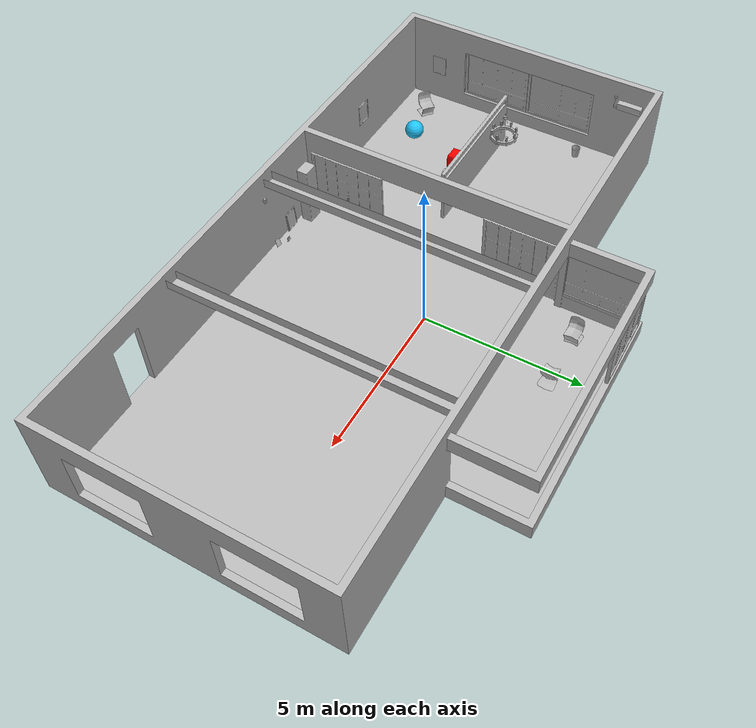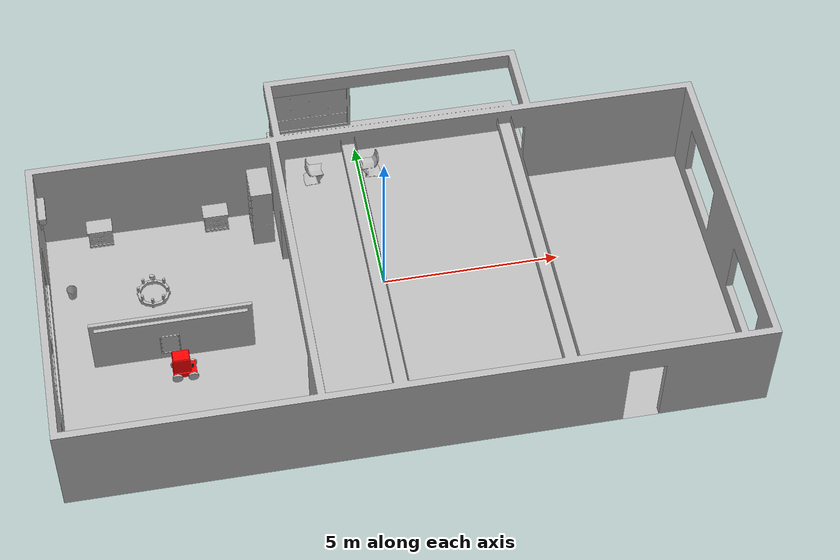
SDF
<sdf version="1.7">
 <world name="default">
  <model name="AirconditionerA_01_001">
   <static>1</static>
   <frame name="aws_robomaker_residential_AirconditionerA_01::__model__" attached_to="aws_robomaker_residential_AirconditionerA_01::link">
    <pose relative_to="__model__">0 0 0 0 -0 0</pose>
   </frame>
   <link name="aws_robomaker_residential_AirconditionerA_01::link">
    <inertial><mass>1</mass></inertial>
    <collision name="collision">
     <geometry>
      <mesh>
       <uri>model://aws_robomaker_residential_AirconditionerA_01/meshes/aws_AirconditionerA_01_collision.DAE</uri>
       <scale>1 1 1</scale>
      </mesh>
     </geometry>
    </collision>
    <visual name="visual">
     <geometry>
      <mesh>
       <uri>model://aws_robomaker_residential_AirconditionerA_01/meshes/aws_AirconditionerA_01_visual.DAE</uri>
      </mesh>
     </geometry>
     <meta><layer>1</layer></meta>
    </visual>
    <pose relative_to="aws_robomaker_residential_AirconditionerA_01::__model__">0 0 0 0 -0 0</pose>
   </link>
   <static>1</static>
   <pose>-9.19941 2.41123 2.08454 0 -0 0</pose>
  </model>
  <model name="AirconditionerB_01_001">
   <static>1</static>
   <frame name="aws_robomaker_residential_AirconditionerB_01::__model__" attached_to="aws_robomaker_residential_AirconditionerB_01::link">
    <pose relative_to="__model__">0 0 0 0 -0 0</pose>
   </frame>
   <link name="aws_robomaker_residential_AirconditionerB_01::link">
    <inertial><mass>1</mass></inertial>
    <collision name="collision">
     <geometry>
      <mesh>
       <uri>model://aws_robomaker_residential_AirconditionerB_01/meshes/aws_AirconditionerB_01_collision.DAE</uri>
       <scale>1 1 1</scale>
      </mesh>
     </geometry>
    </collision>
    <visual name="visual">
     <geometry>
      <mesh>
       <uri>model://aws_robomaker_residential_AirconditionerB_01/meshes/aws_AirconditionerB_01_visual.DAE</uri>
      </mesh>
     </geometry>
     <meta><layer>1</layer></meta>
    </visual>
    <pose relative_to="aws_robomaker_residential_AirconditionerB_01::__model__">0 0 0 0 -0 0</pose>
   </link>
   <pose>-2.00466 -5.22661 0.003485 0 -0 0</pose>
  </model>
  <model name="Ball_01_003">
   <static>1</static>
   <frame name="aws_robomaker_residential_Ball_01::__model__" attached_to="aws_robomaker_residential_Ball_01::link">
    <pose relative_to="__model__">0 0 0 0 -0 0</pose>
   </frame>
   <link name="aws_robomaker_residential_Ball_01::link">
    <inertial>
     <mass>0.12</mass>
     <inertia>
      <ixx>0.030752</ixx>
      <ixy>0</ixy>
      <ixz>0</ixz>
      <iyy>0.030752</iyy>
      <iyz>0</iyz>
      <izz>0.030752</izz>
     </inertia>
    </inertial>
    <collision name="collision">
     <geometry><sphere><radius>0.31</radius></sphere></geometry>
     <surface>
      <friction><ode><mu>0.85</mu><mu2>0.85</mu2></ode></friction>
      <contact><ode><kd>8500</kd><max_vel>5.1</max_vel></ode></contact>
     </surface>
    </collision>
    <visual name="visual">
     <geometry><sphere><radius>0.31</radius></sphere></geometry>
     <material><diffuse>0.12 0.76 0.97 1</diffuse><ambient>0.03 0.21 0.27 1</ambient></material>
     <meta><layer>1</layer></meta>
    </visual>
    <pose relative_to="aws_robomaker_residential_Ball_01::__model__">0 0 0 0 -0 0</pose>
   </link>
   <pose>-6.9455 -4.22174 0.318684 0 -0 0</pose>
  </model>
  <model name="NightStand_01_001">
   <static>1</static>
   <frame name="aws_robomaker_residential_NightStand_01::__model__" attached_to="aws_robomaker_residential_NightStand_01::link">
    <pose relative_to="__model__">0 0 0 0 -0 0</pose>
   </frame>
   <link name="aws_robomaker_residential_NightStand_01::link">
    <inertial>
     <mass>13.6</mass>
     <inertia><ixx>0.6165</ixx><ixy>0</ixy><ixz>0</ixz><iyy>1.29664</iyy><iyz>0</iyz><izz>0.7706</izz></inertia>
    </inertial>
    <collision name="collision">
     <geometry>
      <mesh>
       <uri>model://aws_robomaker_residential_NightStand_01/meshes/aws_NightStand_01_collision.DAE</uri>
       <scale>1 1 1</scale>
      </mesh>
     </geometry>
    </collision>
    <visual name="visual">
     <geometry>
      <mesh><uri>model://aws_robomaker_residential_NightStand_01/meshes/aws_NightStand_01_visual.DAE</uri></mesh>
     </geometry>
     <meta><layer>1</layer></meta>
    </visual>
    <pose relative_to="aws_robomaker_residential_NightStand_01::__model__">0 0 0 0 -0 0</pose>
   </link>
   <static>1</static>
   <pose>-7.72551 2.86042 0.005258 -2e-06 0 0</pose>
  </model>
  <model name="NightStand_01_002">
   <static>1</static>
   <frame name="aws_robomaker_residential_NightStand_01::__model__" attached_to="aws_robomaker_residential_NightStand_01::link">
    <pose relative_to="__model__">0 0 0 0 -0 0</pose>
   </frame>
   <link name="aws_robomaker_residential_NightStand_01::link">
    <inertial>
     <mass>13.6</mass>
     <inertia><ixx>0.6165</ixx><ixy>0</ixy><ixz>0</ixz><iyy>1.29664</iyy><iyz>0</iyz><izz>0.7706</izz></inertia>
    </inertial>
    <collision name="collision">
     <geometry>
      <mesh>
       <uri>model://aws_robomaker_residential_NightStand_01/meshes/aws_NightStand_01_collision.DAE</uri>
       <scale>1 1 1</scale>
      </mesh>
     </geometry>
    </collision>
    <visual name="visual">
     <geometry>
      <mesh><uri>model://aws_robomaker_residential_NightStand_01/meshes/aws_NightStand_01_visual.DAE</uri></mesh>
     </geometry>
     <meta><layer>1</layer></meta>
    </visual>
    <pose relative_to="aws_robomaker_residential_NightStand_01::__model__">0 0 0 0 -0 0</pose>
   </link>
   <static>1</static>
   <pose>-4.40734 2.86042 0.005256 0 2e-06 0</pose>
  </model>
  <model name="ChairD_01_001">
   <static>1</static>
   <frame name="aws_robomaker_residential_ChairD_01::__model__" attached_to="aws_robomaker_residential_ChairD_01::link">
    <pose relative_to="__model__">0 0 0 0 -0 0</pose>
   </frame>
   <link name="aws_robomaker_residential_ChairD_01::link">
    <inertial>
     <mass>4.5</mass>
     <inertia><ixy>0</ixy><ixz>0</ixz><iyz>0</iyz><ixx>0.217</ixx><iyy>0.217</iyy><izz>0.067</izz></inertia>
    </inertial>
    <collision name="collision">
     <geometry>
      <mesh>
       <uri>model://aws_robomaker_residential_ChairD_01/meshes/aws_ChairD_01_collision.DAE</uri>
       <scale>1 1 1</scale>
      </mesh>
     </geometry>
    </collision>
    <visual name="visual">
     <geometry>
      <mesh><uri>model://aws_robomaker_residential_ChairD_01/meshes/aws_ChairD_01_visual.DAE</uri></mesh>
     </geometry>
     <meta><layer>1</layer></meta>
    </visual>
    <pose relative_to="aws_robomaker_residential_ChairD_01::__model__">0 0 0 0 -0 0</pose>
   </link>
   <pose>-1.38078 4.10446 0 0 -0 0</pose>
  </model>
  <model name="ChairD_01_002">
   <static>1</static>
   <frame name="aws_robomaker_residential_ChairD_01::__model__" attached_to="aws_robomaker_residential_ChairD_01::link">
    <pose relative_to="__model__">0 0 0 0 -0 0</pose>
   </frame>
   <link name="aws_robomaker_residential_ChairD_01::link">
    <inertial>
     <mass>4.5</mass>
     <inertia><ixy>0</ixy><ixz>0</ixz><iyz>0</iyz><ixx>0.217</ixx><iyy>0.217</iyy><izz>0.067</izz></inertia>
    </inertial>
    <collision name="collision">
     <geometry>
      <mesh>
       <uri>model://aws_robomaker_residential_ChairD_01/meshes/aws_ChairD_01_collision.DAE</uri>
       <scale>1 1 1</scale>
      </mesh>
     </geometry>
    </collision>
    <visual name="visual">
     <geometry>
      <mesh><uri>model://aws_robomaker_residential_ChairD_01/meshes/aws_ChairD_01_visual.DAE</uri></mesh>
     </geometry>
     <meta><layer>1</layer></meta>
    </visual>
    <pose relative_to="aws_robomaker_residential_ChairD_01::__model__">0 0 0 0 -0 0</pose>
   </link>
   <pose>0.325214 4.10446 0 0 0 -3.13874</pose>
  </model>
  <model name="ChairD_01_003">
   <static>1</static>
   <frame name="aws_robomaker_residential_ChairD_01::__model__" attached_to="aws_robomaker_residential_ChairD_01::link">
    <pose relative_to="__model__">0 0 0 0 -0 0</pose>
   </frame>
   <link name="aws_robomaker_residential_ChairD_01::link">
    <inertial>
     <mass>4.5</mass>
     <inertia><ixy>0</ixy><ixz>0</ixz><iyz>0</iyz><ixx>0.217</ixx><iyy>0.217</iyy><izz>0.067</izz></inertia>
    </inertial>
    <collision name="collision">
     <geometry>
      <mesh>
       <uri>model://aws_robomaker_residential_ChairD_01/meshes/aws_ChairD_01_collision.DAE</uri>
       <scale>1 1 1</scale>
      </mesh>
     </geometry>
    </collision>
    <visual name="visual">
     <geometry>
      <mesh><uri>model://aws_robomaker_residential_ChairD_01/meshes/aws_ChairD_01_visual.DAE</uri></mesh>
     </geometry>
     <meta><layer>1</layer></meta>
    </visual>
    <pose relative_to="aws_robomaker_residential_ChairD_01::__model__">0 0 0 0 -0 0</pose>
   </link>
   <pose>-8.27078 -4.50446 0 0 -0 0.869673</pose>
  </model>
  <model name="Chandelier_01_002">
   <static>1</static>
   <frame name="aws_robomaker_residential_Chandelier_01::__model__" attached_to="aws_robomaker_residential_Chandelier_01::link">
    <pose relative_to="__model__">0 0 0 0 -0 0</pose>
   </frame>
   <link name="aws_robomaker_residential_Chandelier_01::link">
    <inertial><mass>1</mass></inertial>
    <collision name="collision">
     <geometry>
      <mesh>
       <uri>model://aws_robomaker_residential_Chandelier_01/meshes/aws_Chandelier_01_collision.DAE</uri>
       <scale>1 1 1</scale>
      </mesh>
     </geometry>
    </collision>
    <visual name="visual">
     <geometry>
      <mesh><uri>model://aws_robomaker_residential_Chandelier_01/meshes/aws_Chandelier_01_visual.DAE</uri></mesh>
     </geometry>
     <meta><layer>2</layer></meta>
    </visual>
    <pose relative_to="aws_robomaker_residential_Chandelier_01::__model__">0 0 0 0 -0 0</pose>
   </link>
   <static>1</static>
   <pose>-6.45106 -0.69204 1.81 0 -0 0</pose>
  </model>
  <model name="FoldingDoor_01_001">
   <static>1</static>
   <frame name="aws_robomaker_residential_FoldingDoor_01::__model__" attached_to="aws_robomaker_residential_FoldingDoor_01::link">
    <pose relative_to="__model__">0 0 0 0 -0 0</pose>
   </frame>
   <link name="aws_robomaker_residential_FoldingDoor_01::link">
    <inertial><mass>1</mass></inertial>
    <collision name="collision">
     <geometry>
      <mesh>
       <uri>model://aws_robomaker_residential_FoldingDoor_01/meshes/aws_FoldingDoor_01_collision.DAE</uri>
       <scale>1 1 1</scale>
      </mesh>
     </geometry>
    </collision>
    <visual name="visual">
     <geometry>
      <mesh><uri>model://aws_robomaker_residential_FoldingDoor_01/meshes/aws_FoldingDoor_01_visual.DAE</uri></mesh>
     </geometry>
     <meta><layer>2</layer></meta>
    </visual>
    <pose relative_to="aws_robomaker_residential_FoldingDoor_01::__model__">0 0 0 0 -0 0</pose>
   </link>
   <static>1</static>
   <pose>-2.4611 1.84422 0.041881 0 -0 0</pose>
  </model>
  <model name="FoldingDoor_01_002">
   <static>1</static>
   <frame name="aws_robomaker_residential_FoldingDoor_01::__model__" attached_to="aws_robomaker_residential_FoldingDoor_01::link">
    <pose relative_to="__model__">0 0 0 0 -0 0</pose>
   </frame>
   <link name="aws_robomaker_residential_FoldingDoor_01::link">
    <inertial><mass>1</mass></inertial>
    <collision name="collision">
     <geometry>
      <mesh>
       <uri>model://aws_robomaker_residential_FoldingDoor_01/meshes/aws_FoldingDoor_01_collision.DAE</uri>
       <scale>1 1 1</scale>
      </mesh>
     </geometry>
    </collision>
    <visual name="visual">
     <geometry>
      <mesh><uri>model://aws_robomaker_residential_FoldingDoor_01/meshes/aws_FoldingDoor_01_visual.DAE</uri></mesh>
     </geometry>
     <meta><layer>2</layer></meta>
    </visual>
    <pose relative_to="aws_robomaker_residential_FoldingDoor_01::__model__">0 0 0 0 -0 0</pose>
   </link>
   <static>1</static>
   <pose>-2.4611 -4.05332 0.041881 0 -0 0</pose>
  </model>
  <model name="HouseWallB_01_001">
   <static>1</static>
   <frame name="aws_robomaker_residential_HouseWallB_01::__model__" attached_to="aws_robomaker_residential_HouseWallB_01::link">
    <pose relative_to="__model__">0 0 0 0 -0 0</pose>
   </frame>
   <link name="aws_robomaker_residential_HouseWallB_01::link">
    <inertial><mass>1</mass></inertial>
    <collision name="collision">
     <geometry>
      <mesh>
       <uri>model://aws_robomaker_residential_HouseWallB_01/meshes/aws_HouseWallB_01_collision.DAE</uri>
       <scale>1 1 1</scale>
      </mesh>
     </geometry>
    </collision>
    <visual name="visual">
     <geometry>
      <mesh><uri>model://aws_robomaker_residential_HouseWallB_01/meshes/aws_HouseWallB_01_visual.DAE</uri></mesh>
     </geometry>
     <meta><layer>2</layer></meta>
    </visual>
    <pose relative_to="aws_robomaker_residential_HouseWallB_01::__model__">0 0 0 0 -0 0</pose>
   </link>
   <static>1</static>
  </model>
  <model name="FloorB_01_001">
   <static>1</static>
   <frame name="aws_robomaker_residential_FloorB_01::__model__" attached_to="aws_robomaker_residential_FloorB_01::link">
    <pose relative_to="__model__">0 0 0 0 -0 0</pose>
   </frame>
   <link name="aws_robomaker_residential_FloorB_01::link">
    <inertial><mass>100</mass></inertial>
    <collision name="collision">
     <geometry>
      <mesh>
       <uri>model://aws_robomaker_residential_FloorB_01/meshes/aws_FloorB_01_collision.DAE</uri>
       <scale>1 1 0.9</scale>
      </mesh>
     </geometry>
     <surface><friction><ode><mu>100</mu><mu2>50</mu2></ode></friction></surface>
    </collision>
    <visual name="visual">
     <geometry>
      <mesh><uri>model://aws_robomaker_residential_FloorB_01/meshes/aws_FloorB_01_visual.DAE</uri></mesh>
     </geometry>
     <meta><layer>1</layer></meta>
    </visual>
    <pose relative_to="aws_robomaker_residential_FloorB_01::__model__">0 0 0 0 -0 0</pose>
   </link>
   <static>1</static>
  </model>
  <model name="LightC_01_002">
   <static>1</static>
   <frame name="aws_robomaker_residential_LightC_01::__model__" attached_to="aws_robomaker_residential_LightC_01::link">
    <pose relative_to="__model__">0 0 0 0 -0 0</pose>
   </frame>
   <link name="aws_robomaker_residential_LightC_01::link">
    <inertial><mass>1</mass></inertial>
    <collision name="collision">
     <geometry>
      <mesh>
       <uri>model://aws_robomaker_residential_LightC_01/meshes/aws_LightC_01_collision.DAE</uri>
       <scale>1 1 1</scale>
      </mesh>
     </geometry>
    </collision>
    <visual name="visual">
     <geometry>
      <mesh><uri>model://aws_robomaker_residential_LightC_01/meshes/aws_LightC_01_visual.DAE</uri></mesh>
     </geometry>
     <meta><layer>2</layer></meta>
    </visual>
    <pose relative_to="aws_robomaker_residential_LightC_01::__model__">0 0 0 0 -0 0</pose>
   </link>
   <static>1</static>
   <pose>-0.138245 -5.44437 2 0 -0 0</pose>
  </model>
  <model name="PortraitA_01">
   <static>1</static>
   <frame name="aws_robomaker_residential_PortraitA_01::__model__" attached_to="aws_robomaker_residential_PortraitA_01::link">
    <pose relative_to="__model__">0 0 0 0 -0 0</pose>
   </frame>
   <link name="aws_robomaker_residential_PortraitA_01::link">
    <inertial><mass>1</mass></inertial>
    <collision name="collision">
     <geometry>
      <mesh>
       <uri>model://aws_robomaker_residential_PortraitA_01/meshes/aws_PortraitA_01_collision.DAE</uri>
       <scale>1 1 1</scale>
      </mesh>
     </geometry>
    </collision>
    <visual name="visual">
     <geometry>
      <mesh><uri>model://aws_robomaker_residential_PortraitA_01/meshes/aws_PortraitA_01_visual.DAE</uri></mesh>
     </geometry>
     <meta><layer>2</layer></meta>
    </visual>
    <pose relative_to="aws_robomaker_residential_PortraitA_01::__model__">0 0 0 0 -0 0</pose>
   </link>
   <static>1</static>
   <pose>-2.71236 -4.81754 1 0 -0 1.5668</pose>
  </model>
  <model name="PortraitB_01">
   <static>1</static>
   <frame name="aws_robomaker_residential_PortraitB_01::__model__" attached_to="aws_robomaker_residential_PortraitB_01::link">
    <pose relative_to="__model__">0 0 0 0 -0 0</pose>
   </frame>
   <link name="aws_robomaker_residential_PortraitB_01::link">
    <inertial><mass>1</mass></inertial>
    <collision name="collision">
     <geometry>
      <mesh>
       <uri>model://aws_robomaker_residential_PortraitB_01/meshes/aws_PortraitB_01_collision.DAE</uri>
       <scale>1 1 1</scale>
      </mesh>
     </geometry>
    </collision>
    <visual name="visual">
     <geometry>
      <mesh><uri>model://aws_robomaker_residential_PortraitB_01/meshes/aws_PortraitB_01_visual.DAE</uri></mesh>
     </geometry>
     <meta><layer>2</layer></meta>
    </visual>
    <pose relative_to="aws_robomaker_residential_PortraitB_01::__model__">0 0 0 0 -0 0</pose>
   </link>
   <static>1</static>
   <pose>-1.27968 -5.42963 0 -0.076901 0 -3.11672</pose>
  </model>
  <model name="PortraitC_01">
   <static>1</static>
   <frame name="aws_robomaker_residential_PortraitC_01::__model__" attached_to="aws_robomaker_residential_PortraitC_01::link">
    <pose relative_to="__model__">0 0 0 0 -0 0</pose>
   </frame>
   <link name="aws_robomaker_residential_PortraitC_01::link">
    <inertial><mass>1</mass></inertial>
    <collision name="collision">
     <geometry>
      <mesh>
       <uri>model://aws_robomaker_residential_PortraitC_01/meshes/aws_PortraitC_01_collision.DAE</uri>
       <scale>1 1 1</scale>
      </mesh>
     </geometry>
    </collision>
    <visual name="visual">
     <geometry>
      <mesh><uri>model://aws_robomaker_residential_PortraitC_01/meshes/aws_PortraitC_01_visual.DAE</uri></mesh>
     </geometry>
     <meta><layer>2</layer></meta>
    </visual>
    <pose relative_to="aws_robomaker_residential_PortraitC_01::__model__">0 0 0 0 -0 0</pose>
   </link>
   <static>1</static>
   <pose>-9.2949 -4.52608 1 0 -0 1.55473</pose>
  </model>
  <model name="PortraitE_01">
   <static>1</static>
   <frame name="aws_robomaker_residential_PortraitE_01::__model__" attached_to="aws_robomaker_residential_PortraitE_01::link">
    <pose relative_to="__model__">0 0 0 0 -0 0</pose>
   </frame>
   <link name="aws_robomaker_residential_PortraitE_01::link">
    <inertial><mass>1</mass></inertial>
    <collision name="collision">
     <geometry>
      <mesh>
       <uri>model://aws_robomaker_residential_PortraitE_01/meshes/aws_PortraitE_01_collision.DAE</uri>
       <scale>1 1 1</scale>
      </mesh>
     </geometry>
    </collision>
    <visual name="visual">
     <geometry>
      <mesh><uri>model://aws_robomaker_residential_PortraitE_01/meshes/aws_PortraitE_01_visual.DAE</uri></mesh>
     </geometry>
     <meta><layer>2</layer></meta>
    </visual>
    <pose relative_to="aws_robomaker_residential_PortraitE_01::__model__">0 0 0 0 -0 0</pose>
   </link>
   <static>1</static>
   <pose>-5.77309 -5.49247 1 0 -0 3.13263</pose>
  </model>
  <model name="PortraitE_02">
   <static>1</static>
   <frame name="aws_robomaker_residential_PortraitE_02::__model__" attached_to="aws_robomaker_residential_PortraitE_02::link">
    <pose relative_to="__model__">0 0 0 0 -0 0</pose>
   </frame>
   <link name="aws_robomaker_residential_PortraitE_02::link">
    <inertial><mass>1</mass></inertial>
    <collision name="collision">
     <geometry>
      <mesh>
       <uri>model://aws_robomaker_residential_PortraitE_02/meshes/aws_PortraitE_01_collision.DAE</uri>
       <scale>1 1 1</scale>
      </mesh>
     </geometry>
    </collision>
    <visual name="visual">
     <geometry>
      <mesh><uri>model://aws_robomaker_residential_PortraitE_02/meshes/aws_PortraitE_01_visual.DAE</uri></mesh>
     </geometry>
     <meta><layer>2</layer></meta>
    </visual>
    <pose relative_to="aws_robomaker_residential_PortraitE_02::__model__">0 0 0 0 -0 0</pose>
   </link>
   <static>1</static>
   <pose>-6.19302 -1.59021 0.3 0 -0 0.00429</pose>
  </model>
  <model name="DeskPortraitA_01">
   <static>1</static>
   <frame name="aws_robomaker_residential_DeskPortraitA_01::__model__" attached_to="aws_robomaker_residential_DeskPortraitA_01::link">
    <pose relative_to="__model__">0 0 0 0 -0 0</pose>
   </frame>
   <link name="aws_robomaker_residential_DeskPortraitA_01::link">
    <inertial>
     <mass>1</mass>
     <inertia><ixx>0.0835</ixx><ixy>0</ixy><ixz>0</ixz><iyy>0.16</iyy><iyz>0</iyz><izz>0.08347</izz></inertia>
    </inertial>
    <collision name="collision">
     <geometry>
      <mesh>
       <uri>model://aws_robomaker_residential_DeskPortraitA_01/meshes/aws_DeskPortraitA_01_collision.DAE</uri>
       <scale>1 1 1</scale>
      </mesh>
     </geometry>
    </collision>
    <visual name="visual">
     <geometry>
      <mesh>
       <uri>model://aws_robomaker_residential_DeskPortraitA_01/meshes/aws_DeskPortraitA_01_visual.DAE</uri>
      </mesh>
     </geometry>
     <meta><layer>1</layer></meta>
    </visual>
    <pose relative_to="aws_robomaker_residential_DeskPortraitA_01::__model__">0 0 0 0 -0 0</pose>
   </link>
   <pose>-0.036864 -5.11016 0.49866 0 -0 2.92778</pose>
  </model>
  <model name="DeskPortraitD_02">
   <static>1</static>
   <frame name="aws_robomaker_residential_DeskPortraitD_02::__model__" attached_to="aws_robomaker_residential_DeskPortraitD_02::link">
    <pose relative_to="__model__">0 0 0 0 -0 0</pose>
   </frame>
   <link name="aws_robomaker_residential_DeskPortraitD_02::link">
    <inertial>
     <mass>0.4</mass>
     <inertia><ixx>0.0616</ixx><ixy>0</ixy><ixz>0</ixz><iyy>0.1313</iyy><iyz>0</iyz><izz>0.0803</izz></inertia>
    </inertial>
    <collision name="collision">
     <geometry>
      <mesh>
       <uri>model://aws_robomaker_residential_DeskPortraitD_02/meshes/aws_DeskPortraitD_01_collision.DAE</uri>
       <scale>1 1 1</scale>
      </mesh>
     </geometry>
     <surface>
      <friction><ode><mu>0.7</mu><mu2>0.7</mu2></ode></friction>
      <contact><ode><kd>28500</kd></ode></contact>
     </surface>
    </collision>
    <visual name="visual">
     <geometry>
      <mesh>
       <uri>model://aws_robomaker_residential_DeskPortraitD_02/meshes/aws_DeskPortraitD_01_visual.DAE</uri>
      </mesh>
     </geometry>
     <meta><layer>1</layer></meta>
    </visual>
    <pose relative_to="aws_robomaker_residential_DeskPortraitD_02::__model__">0 0 0 0 -0 0</pose>
   </link>
   <pose>-0.589211 -5.10989 0.192145 -1.5e-05 -0.000174 -3.11254</pose>
  </model>
  <model name="Trash_01_002">
   <static>1</static>
   <frame name="aws_robomaker_residential_Trash_01::__model__" attached_to="aws_robomaker_residential_Trash_01::link">
    <pose relative_to="__model__">0 0 0 0 -0 0</pose>
   </frame>
   <link name="aws_robomaker_residential_Trash_01::link">
    <inertial>
     <mass>0.1</mass>
     <inertia><ixy>0</ixy><ixz>0</ixz><iyz>0</iyz><ixx>0.05288</ixx><iyy>0.05288</iyy><izz>0.09132</izz></inertia>
    </inertial>
    <collision name="collision">
     <geometry>
      <mesh>
       <uri>model://aws_robomaker_residential_Trash_01/meshes/aws_Trash_01_collision.DAE</uri>
       <scale>1 1 1</scale>
      </mesh>
     </geometry>
    </collision>
    <visual name="visual">
     <geometry>
      <mesh><uri>model://aws_robomaker_residential_Trash_01/meshes/aws_Trash_01_visual.DAE</uri></mesh>
     </geometry>
     <meta><layer>1</layer></meta>
    </visual>
    <pose relative_to="aws_robomaker_residential_Trash_01::__model__">0 0 0 0 -0 0</pose>
   </link>
   <pose>-8.70415 1.00058 0.011 0 -0 0</pose>
  </model>
  <model name="RoomWall_01_001">
   <static>1</static>
   <frame name="aws_robomaker_residential_RoomWall_01::__model__" attached_to="aws_robomaker_residential_RoomWall_01::link">
    <pose relative_to="__model__">0 0 0 0 -0 0</pose>
   </frame>
   <link name="aws_robomaker_residential_RoomWall_01::link">
    <inertial><mass>100</mass></inertial>
    <collision name="collision">
     <geometry>
      <mesh>
       <uri>model://aws_robomaker_residential_RoomWall_01/meshes/aws_RoomWall_01_collision.DAE</uri>
       <scale>1 1 1</scale>
      </mesh>
     </geometry>
    </collision>
    <visual name="visual">
     <geometry>
      <mesh><uri>model://aws_robomaker_residential_RoomWall_01/meshes/aws_RoomWall_01_visual.DAE</uri></mesh>
     </geometry>
     <meta><layer>2</layer></meta>
    </visual>
    <pose relative_to="aws_robomaker_residential_RoomWall_01::__model__">0 0 0 0 -0 0</pose>
   </link>
   <static>1</static>
   <pose>-6.09755 -1.49618 0.028124 0 -0 0</pose>
  </model>
  <model name="Wardrobe_01_001">
   <static>1</static>
   <frame name="aws_robomaker_residential_Wardrobe_01::__model__" attached_to="aws_robomaker_residential_Wardrobe_01::link">
    <pose relative_to="__model__">0 0 0 0 -0 0</pose>
   </frame>
   <link name="aws_robomaker_residential_Wardrobe_01::link">
    <inertial><mass>51.7</mass></inertial>
    <collision name="collision">
     <geometry>
      <mesh>
       <uri>model://aws_robomaker_residential_Wardrobe_01/meshes/aws_Wardrobe_01_collision.DAE</uri>
       <scale>1 1 1</scale>
      </mesh>
     </geometry>
    </collision>
    <visual name="visual">
     <geometry>
      <mesh><uri>model://aws_robomaker_residential_Wardrobe_01/meshes/aws_Wardrobe_01_visual.DAE</uri></mesh>
     </geometry>
     <meta><layer>1</layer></meta>
    </visual>
    <pose relative_to="aws_robomaker_residential_Wardrobe_01::__model__">0 0 0 0 -0 0</pose>
   </link>
   <static>1</static>
   <pose>-3.14671 2.4762 0.000704 0 0 -1.56967</pose>
  </model>
  <model name="RoomWindow_01_001">
   <static>1</static>
   <frame name="aws_robomaker_residential_RoomWindow_01::__model__" attached_to="aws_robomaker_residential_RoomWindow_01::link">
    <pose relative_to="__model__">0 0 0 0 -0 0</pose>
   </frame>
   <link name="aws_robomaker_residential_RoomWindow_01::link">
    <inertial><mass>1</mass></inertial>
    <collision name="collision">
     <geometry>
      <mesh>
       <uri>model://aws_robomaker_residential_RoomWindow_01/meshes/aws_RoomWindow_01_collision.DAE</uri>
       <scale>1 1 1</scale>
      </mesh>
     </geometry>
    </collision>
    <visual name="visual">
     <geometry>
      <mesh><uri>model://aws_robomaker_residential_RoomWindow_01/meshes/aws_RoomWindow_01_visual.DAE</uri></mesh>
     </geometry>
     <meta><layer>2</layer></meta>
    </visual>
    <pose relative_to="aws_robomaker_residential_RoomWindow_01::__model__">0 0 0 0 -0 0</pose>
   </link>
   <static>1</static>
   <pose>-9.4186 -0.026285 0.502739 0 -0 0</pose>
  </model>
  <model name="RoomWindow_01_002">
   <static>1</static>
   <frame name="aws_robomaker_residential_RoomWindow_01::__model__" attached_to="aws_robomaker_residential_RoomWindow_01::link">
    <pose relative_to="__model__">0 0 0 0 -0 0</pose>
   </frame>
   <link name="aws_robomaker_residential_RoomWindow_01::link">
    <inertial><mass>1</mass></inertial>
    <collision name="collision">
     <geometry>
      <mesh>
       <uri>model://aws_robomaker_residential_RoomWindow_01/meshes/aws_RoomWindow_01_collision.DAE</uri>
       <scale>1 1 1</scale>
      </mesh>
     </geometry>
    </collision>
    <visual name="visual">
     <geometry>
      <mesh><uri>model://aws_robomaker_residential_RoomWindow_01/meshes/aws_RoomWindow_01_visual.DAE</uri></mesh>
     </geometry>
     <meta><layer>2</layer></meta>
    </visual>
    <pose relative_to="aws_robomaker_residential_RoomWindow_01::__model__">0 0 0 0 -0 0</pose>
   </link>
   <static>1</static>
   <pose>-9.4186 -2.37409 0.502739 0 -0 0</pose>
  </model>
  <model name="RoomWindow_01_008">
   <static>1</static>
   <frame name="aws_robomaker_residential_RoomWindow_01::__model__" attached_to="aws_robomaker_residential_RoomWindow_01::link">
    <pose relative_to="__model__">0 0 0 0 -0 0</pose>
   </frame>
   <link name="aws_robomaker_residential_RoomWindow_01::link">
    <inertial><mass>1</mass></inertial>
    <collision name="collision">
     <geometry>
      <mesh>
       <uri>model://aws_robomaker_residential_RoomWindow_01/meshes/aws_RoomWindow_01_collision.DAE</uri>
       <scale>1 1 1</scale>
      </mesh>
     </geometry>
    </collision>
    <visual name="visual">
     <geometry>
      <mesh><uri>model://aws_robomaker_residential_RoomWindow_01/meshes/aws_RoomWindow_01_visual.DAE</uri></mesh>
     </geometry>
     <meta><layer>2</layer></meta>
    </visual>
    <pose relative_to="aws_robomaker_residential_RoomWindow_01::__model__">0 0 0 0 -0 0</pose>
   </link>
   <static>1</static>
   <pose>-1.19934 5.60069 0.502739 0 0 -1.56627</pose>
  </model>
  <model name="RoomWindow_01_009">
   <static>1</static>
   <frame name="aws_robomaker_residential_RoomWindow_01::__model__" attached_to="aws_robomaker_residential_RoomWindow_01::link">
    <pose relative_to="__model__">0 0 0 0 -0 0</pose>
   </frame>
   <link name="aws_robomaker_residential_RoomWindow_01::link">
    <inertial><mass>1</mass></inertial>
    <collision name="collision">
     <geometry>
      <mesh>
       <uri>model://aws_robomaker_residential_RoomWindow_01/meshes/aws_RoomWindow_01_collision.DAE</uri>
       <scale>1 1 1</scale>
      </mesh>
     </geometry>
    </collision>
    <visual name="visual">
     <geometry>
      <mesh><uri>model://aws_robomaker_residential_RoomWindow_01/meshes/aws_RoomWindow_01_visual.DAE</uri></mesh>
     </geometry>
     <meta><layer>2</layer></meta>
    </visual>
    <pose relative_to="aws_robomaker_residential_RoomWindow_01::__model__">0 0 0 0 -0 0</pose>
   </link>
   <static>1</static>
   <pose>-2.39662 4.38761 0.502739 0 -0 0</pose>
  </model>
  <model name="mobile_bot">
   <static>0</static>
   <pose>-5.90366 -2.14996 0.19 2e-06 1e-06 0.000186</pose>
   <link name="base_footprint">
    <inertial>
     <inertia><ixx>1</ixx><ixy>0</ixy><ixz>0</ixz><iyy>1</iyy><iyz>0</iyz><izz>1</izz></inertia>
     <mass>1</mass>
    </inertial>
   </link>
   <link name="base_link">
    <collision name="base_collision">
     <pose>0 0 0.1 0 -0 0</pose>
     <geometry><box><size>0.7 0.39 0.2</size></box></geometry>
    </collision>
    <visual name="base_visual">
     <pose>0 0 -0.05 1.5708 -0 -3.14159</pose>
     <geometry>
      <mesh><uri>model://mobile_bot_description/meshes/robot_base.stl</uri><scale>1 1 1</scale></mesh>
     </geometry>
     <material>
      <ambient>1 0 0 1</ambient>
      <diffuse>1 0 0 1</diffuse>
      <specular>0 0 0 1</specular>
      <emissive>0 0 0 1</emissive>
     </material>
    </visual>
    <inertial>
     <inertia><ixx>1</ixx><ixy>0</ixy><ixz>0</ixz><iyy>1</iyy><iyz>0</iyz><izz>1</izz></inertia>
     <mass>1</mass>
    </inertial>
   </link>
   <link name="imu_link">
    <sensor name="bmb_imu" type="imu">
     <always_on>1</always_on>
     <update_rate>100</update_rate>
     <visualize>1</visualize>
     <imu>
      <angular_velocity>
       <x><noise type="gaussian"><mean>0</mean><stddev>0.0002</stddev></noise></x>
       <y><noise type="gaussian"><mean>0</mean><stddev>0.0002</stddev></noise></y>
       <z><noise type="gaussian"><mean>0</mean><stddev>0.0002</stddev></noise></z>
      </angular_velocity>
      <linear_acceleration>
       <x><noise type="gaussian"><mean>0</mean><stddev>0.017</stddev></noise></x>
       <y><noise type="gaussian"><mean>0</mean><stddev>0.017</stddev></noise></y>
       <z><noise type="gaussian"><mean>0</mean><stddev>0.017</stddev></noise></z>
      </linear_acceleration>
      <orientation>
       <x><noise type="gaussian"><mean>0.0</mean><stddev>2e-3</stddev></noise></x>
       <y><noise type="gaussian"><mean>0.0</mean><stddev>2e-3</stddev></noise></y>
       <z><noise type="gaussian"><mean>0.0</mean><stddev>2e-3</stddev></noise></z>
      </orientation>
     </imu>
     <plugin name="mobile_bot_imu" filename="libgazebo_ros_imu_sensor.so">
      <initial_orientation_as_reference>0</initial_orientation_as_reference>
      <frame_name>imu_link</frame_name>
      <ros><namespace>/imu</namespace><remapping>~/out:=data</remapping></ros>
     </plugin>
    </sensor>
    <inertial>
     <inertia><ixx>1</ixx><ixy>0</ixy><ixz>0</ixz><iyy>1</iyy><iyz>0</iyz><izz>1</izz></inertia>
     <mass>1</mass>
    </inertial>
   </link>
   <link name="gps_link">
    <sensor name="bmb_gps" type="gps">
     <always_on>1</always_on>
     <update_rate>10</update_rate>
     <gps>
      <position_sensing>
       <horizontal><noise type="gaussian"><mean>0</mean><stddev>0.01</stddev></noise></horizontal>
       <vertical><noise type="gaussian"><mean>0</mean><stddev>1</stddev></noise></vertical>
      </position_sensing>
     </gps>
     <plugin name="mobile_bot_gps" filename="libgazebo_ros_gps_sensor.so">
      <ros><remapping>~/out:=gps/fix</remapping></ros>
     </plugin>
    </sensor>
    <inertial>
     <inertia><ixx>1</ixx><ixy>0</ixy><ixz>0</ixz><iyy>1</iyy><iyz>0</iyz><izz>1</izz></inertia>
     <mass>1</mass>
    </inertial>
   </link>
   <link name="lidar_link">
    <inertial>
     <pose>0.215 0 0.13 0 -0 0</pose>
     <inertia><ixx>0.001</ixx><ixy>0</ixy><ixz>0</ixz><iyy>0.001</iyy><iyz>0</iyz><izz>0.001</izz></inertia>
     <mass>0.114</mass>
    </inertial>
    <collision name="lidar_collision">
     <pose>0.215 0 0.13 0 -0 0</pose>
     <geometry><cylinder><radius>0.05</radius><length>0.04</length></cylinder></geometry>
    </collision>
    <visual name="lidar_visual">
     <pose>0.215 0 0.13 0 -0 0</pose>
     <geometry><cylinder><radius>0.05</radius><length>0.04</length></cylinder></geometry>
     <material>
      <ambient>0 0 0 1</ambient>
      <diffuse>0 0 0 1</diffuse>
      <specular>0 0 0 1</specular>
      <emissive>0 0 0 1</emissive>
     </material>
    </visual>
    <sensor name="lidar" type="ray">
     <pose>0.215 0 0.215 0 -0 0</pose>
     <always_on>1</always_on>
     <visualize>1</visualize>
     <update_rate>10</update_rate>
     <ray>
      <scan>
       <horizontal><samples>24</samples><min_angle>0</min_angle><max_angle>6.28318</max_angle></horizontal>
      </scan>
      <range><min>0.12</min><max>20.0</max></range>
      <noise><type>gaussian</type><mean>0</mean><stddev>0.01</stddev></noise>
     </ray>
     <plugin name="scan" filename="libgazebo_ros_ray_sensor.so">
      <ros><argument>~/out:=scan</argument></ros>
      <output_type>sensor_msgs/LaserScan</output_type>
      <frame_name>lidar_link</frame_name>
     </plugin>
    </sensor>
   </link>
   <link name="drivewhl_l_link">
    <pose>-0.221 0.23 -0.05 3.14159 1.57079 -1.57079</pose>
    <collision name="drivewhl_l_collision">
     <geometry><cylinder><radius>0.14</radius><length>0.06</length></cylinder></geometry>
    </collision>
    <visual name="drivewhl_l_visual">
     <geometry><cylinder><radius>0.14</radius><length>0.06</length></cylinder></geometry>
    </visual>
    <inertial>
     <inertia><ixx>1</ixx><ixy>0</ixy><ixz>0</ixz><iyy>1</iyy><iyz>0</iyz><izz>1</izz></inertia>
     <mass>1</mass>
    </inertial>
   </link>
   <link name="drivewhl_r_link">
    <pose>-0.221 -0.23 -0.05 3.14159 1.57079 -1.57079</pose>
    <collision name="drivewhl_r_collision">
     <geometry><cylinder><radius>0.14</radius><length>0.06</length></cylinder></geometry>
    </collision>
    <visual name="drivewhl_r_visual">
     <geometry><cylinder><radius>0.14</radius><length>0.06</length></cylinder></geometry>
    </visual>
    <inertial>
     <inertia><ixx>1</ixx><ixy>0</ixy><ixz>0</ixz><iyy>1</iyy><iyz>0</iyz><izz>1</izz></inertia>
     <mass>1</mass>
    </inertial>
   </link>
   <link name="front_wl_link">
    <pose>0.217 0.23 -0.05 3.14159 1.57079 -1.57079</pose>
    <collision name="front_wl_collision">
     <geometry><cylinder><radius>0.14</radius><length>0.06</length></cylinder></geometry>
    </collision>
    <visual name="front_wl_visual">
     <geometry><cylinder><radius>0.14</radius><length>0.06</length></cylinder></geometry>
    </visual>
    <inertial>
     <inertia><ixx>1</ixx><ixy>0</ixy><ixz>0</ixz><iyy>1</iyy><iyz>0</iyz><izz>1</izz></inertia>
     <mass>1</mass>
    </inertial>
   </link>
   <link name="front_wr_link">
    <pose>0.217 -0.23 -0.05 3.14159 1.57079 -1.57079</pose>
    <collision name="front_wr_collision">
     <geometry><cylinder><radius>0.14</radius><length>0.06</length></cylinder></geometry>
    </collision>
    <visual name="front_wr_visual">
     <geometry><cylinder><radius>0.14</radius><length>0.06</length></cylinder></geometry>
    </visual>
    <inertial>
     <inertia><ixx>1</ixx><ixy>0</ixy><ixz>0</ixz><iyy>1</iyy><iyz>0</iyz><izz>1</izz></inertia>
     <mass>1</mass>
    </inertial>
   </link>
   <joint name="base_joint" type="fixed"><parent>base_footprint</parent><child>base_link</child></joint>
   <joint name="drivewhl_l_joint" type="revolute">
    <parent>base_link</parent>
    <child>drivewhl_l_link</child>
    <axis>
     <xyz>0 0 1</xyz>
     <limit><lower>-1e+16</lower><upper>1e+16</upper></limit>
     <dynamics><spring_reference>0</spring_reference><spring_stiffness>0</spring_stiffness></dynamics>
    </axis>
   </joint>
   <joint name="drivewhl_r_joint" type="revolute">
    <parent>base_link</parent>
    <child>drivewhl_r_link</child>
    <axis>
     <xyz>0 0 1</xyz>
     <limit><lower>-1e+16</lower><upper>1e+16</upper></limit>
     <dynamics><spring_reference>0</spring_reference><spring_stiffness>0</spring_stiffness></dynamics>
    </axis>
   </joint>
   <joint name="front_wl_joint" type="revolute">
    <parent>base_link</parent>
    <child>front_wl_link</child>
    <axis>
     <xyz>0 0 1</xyz>
     <limit><lower>-1e+16</lower><upper>1e+16</upper></limit>
     <dynamics><spring_reference>0</spring_reference><spring_stiffness>0</spring_stiffness></dynamics>
    </axis>
   </joint>
   <joint name="front_wr_joint" type="revolute">
    <parent>base_link</parent>
    <child>front_wr_link</child>
    <axis>
     <xyz>0 0 1</xyz>
     <limit><lower>-1e+16</lower><upper>1e+16</upper></limit>
     <dynamics><spring_reference>0</spring_reference><spring_stiffness>0</spring_stiffness></dynamics>
    </axis>
   </joint>
   <joint name="imu_joint" type="fixed"><parent>base_link</parent><child>imu_link</child></joint>
   <joint name="gps_joint" type="fixed"><parent>base_link</parent><child>gps_link</child></joint>
   <joint name="lidar_joint" type="fixed"><parent>base_link</parent><child>lidar_link</child></joint>
   <plugin name="mobile_bot_diff_drive" filename="libgazebo_ros_diff_drive.so">
    <update_rate>30</update_rate>
    <left_joint>front_wl_joint</left_joint>
    <right_joint>front_wr_joint</right_joint>
    <left_rear_joint>drivewhl_l_joint</left_rear_joint>
    <right_rear_joint>drivewhl_r_joint</right_rear_joint>
    <wheel_separation>0.52</wheel_separation>
    <wheel_diameter>0.28</wheel_diameter>
    <max_wheel_torque>20</max_wheel_torque>
    <max_wheel_acceleration>1.0</max_wheel_acceleration>
    <command_topic>cmd_vel</command_topic>
    <publish_odom>1</publish_odom>
    <publish_odom_tf>1</publish_odom_tf>
    <publish_wheel_tf>1</publish_wheel_tf>
    <odometry_topic>odom</odometry_topic>
    <odometry_frame>odom</odometry_frame>
    <robot_base_frame>base_footprint</robot_base_frame>
    <odometry_source>0</odometry_source>
    <ros><remapping>odom:=odom</remapping></ros>
   </plugin>
   <plugin name="mobile_bot_joint_state" filename="libgazebo_ros_joint_state_publisher.so">
    <ros><remapping>~/out:=joint_states</remapping></ros>
    <update_rate>30</update_rate>
    <joint_name>drivewhl_l_joint</joint_name>
    <joint_name>drivewhl_r_joint</joint_name>
    <joint_name>front_wl_joint</joint_name>
    <joint_name>front_wr_joint</joint_name>
   </plugin>
  </model>
 </world>
</sdf>
